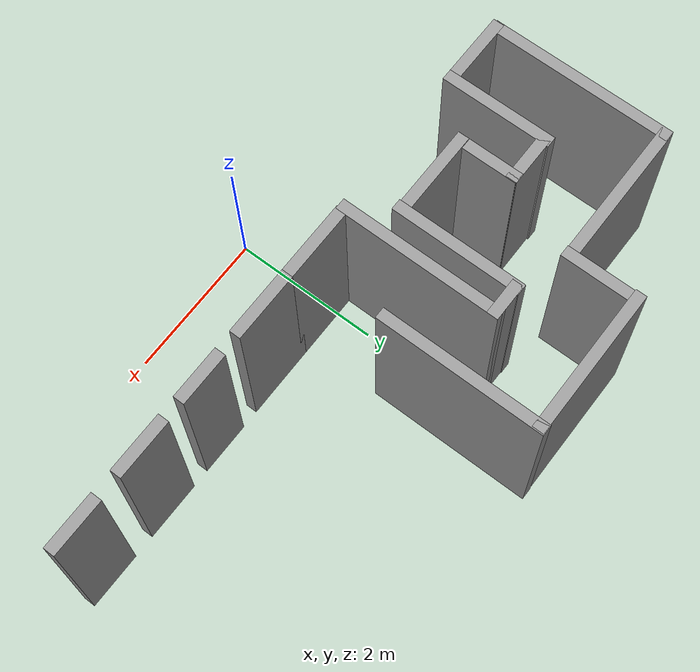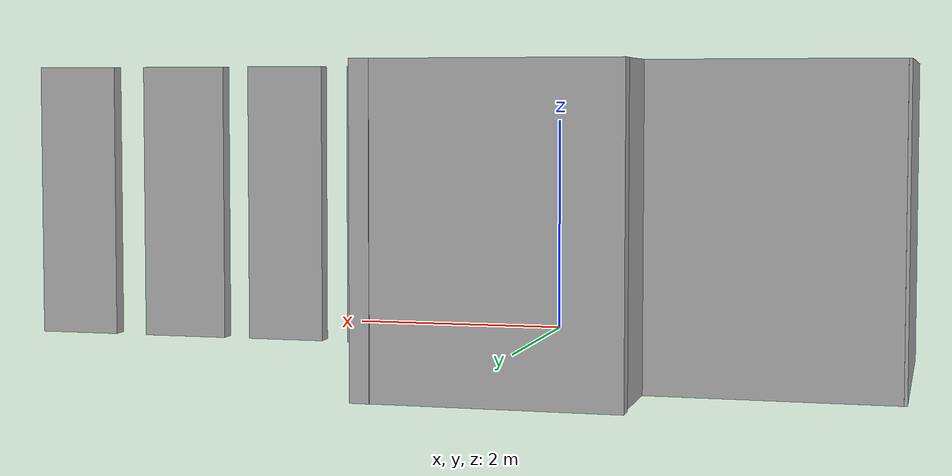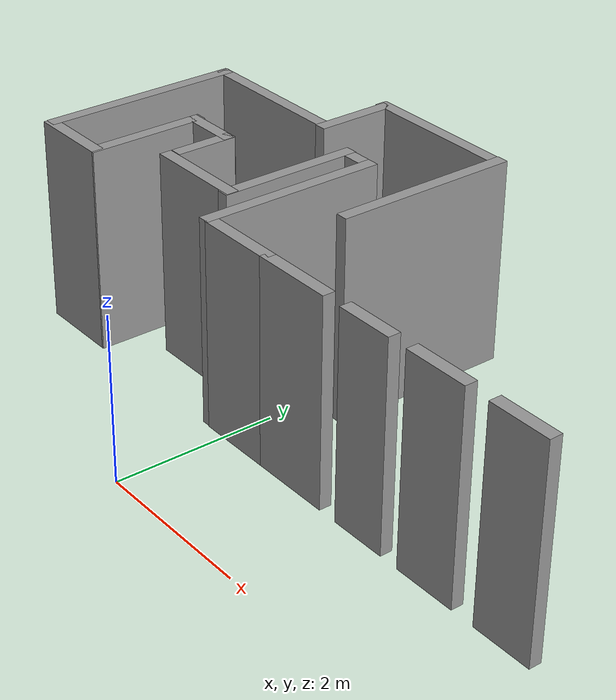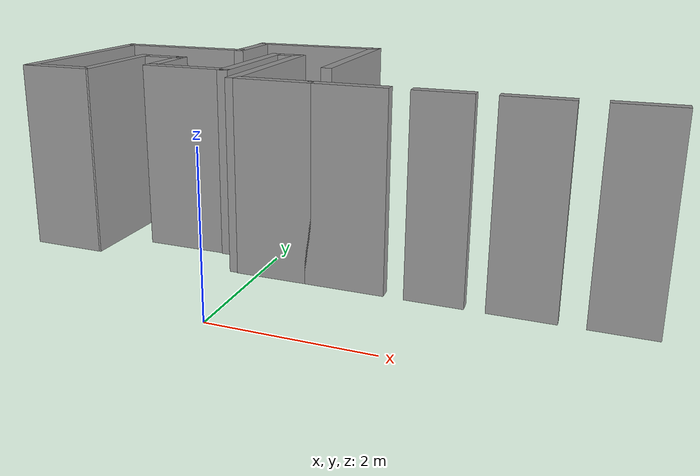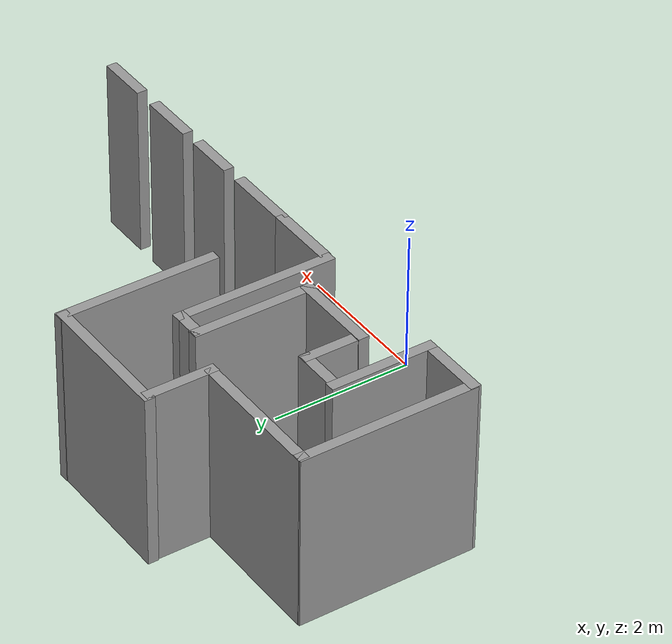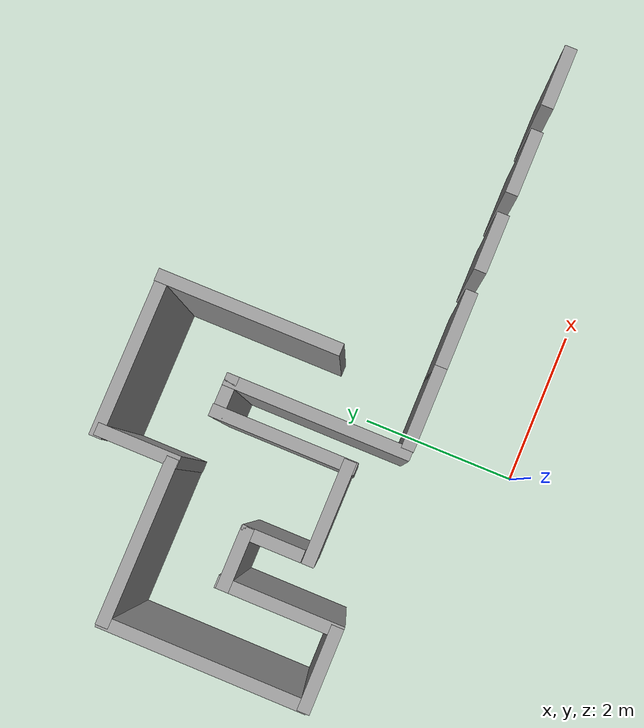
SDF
<?xml version='1.0'?>
<sdf version='1.7'>
  <model name='NewWorldEdit1'>
    <link name='Wall_10'>
      <pose>-2.10271 2.74597 0 0 -0 0</pose>
      <self_collide>0</self_collide>
      <enable_wind>0</enable_wind>
      <kinematic>0</kinematic>
      <visual name='Wall_10_Visual'>
        <pose>0 0 1.25 0 -0 0</pose>
        <geometry>
          <box>
            <size>0.75 0.15 2.5</size>
          </box>
        </geometry>
        <material>
          <script>
            <uri>file://media/materials/scripts/gazebo.material</uri>
            <name>Gazebo/Grey</name>
          </script>
          <ambient>1 1 1 1</ambient>
          <shader type='pixel'/>
        </material>
        <meta>
          <layer>0</layer>
        </meta>
        <transparency>0</transparency>
        <cast_shadows>1</cast_shadows>
      </visual>
      <collision name='Wall_10_Collision'>
        <laser_retro>0</laser_retro>
        <max_contacts>10</max_contacts>
        <pose>0 0 1.25 0 -0 0</pose>
        <geometry>
          <box>
            <size>0.75 0.15 2.5</size>
          </box>
        </geometry>
        <surface>
          <friction>
            <ode>
              <mu>1</mu>
              <mu2>1</mu2>
              <fdir1>0 0 0</fdir1>
              <slip1>0</slip1>
              <slip2>0</slip2>
            </ode>
            <torsional>
              <coefficient>1</coefficient>
              <patch_radius>0</patch_radius>
              <surface_radius>0</surface_radius>
              <use_patch_radius>1</use_patch_radius>
              <ode>
                <slip>0</slip>
              </ode>
            </torsional>
          </friction>
          <bounce>
            <restitution_coefficient>0</restitution_coefficient>
            <threshold>1e+06</threshold>
          </bounce>
          <contact>
            <collide_without_contact>0</collide_without_contact>
            <collide_without_contact_bitmask>1</collide_without_contact_bitmask>
            <collide_bitmask>1</collide_bitmask>
            <ode>
              <soft_cfm>0</soft_cfm>
              <soft_erp>0.2</soft_erp>
              <kp>1e+13</kp>
              <kd>1</kd>
              <max_vel>0.01</max_vel>
              <min_depth>0</min_depth>
            </ode>
            <bullet>
              <split_impulse>1</split_impulse>
              <split_impulse_penetration_threshold>-0.01</split_impulse_penetration_threshold>
              <soft_cfm>0</soft_cfm>
              <soft_erp>0.2</soft_erp>
              <kp>1e+13</kp>
              <kd>1</kd>
            </bullet>
          </contact>
        </surface>
      </collision>
    </link>
    <link name='Wall_14'>
      <pose>-1.79351 2.43671 0 0 0 -1.5708</pose>
      <self_collide>0</self_collide>
      <enable_wind>0</enable_wind>
      <kinematic>0</kinematic>
      <visual name='Wall_14_Visual'>
        <pose>0 0 1.25 0 -0 0</pose>
        <geometry>
          <box>
            <size>0.75 0.15 2.5</size>
          </box>
        </geometry>
        <material>
          <script>
            <uri>file://media/materials/scripts/gazebo.material</uri>
            <name>Gazebo/Grey</name>
          </script>
          <ambient>1 1 1 1</ambient>
          <shader type='pixel'/>
        </material>
        <meta>
          <layer>0</layer>
        </meta>
        <transparency>0</transparency>
        <cast_shadows>1</cast_shadows>
      </visual>
      <collision name='Wall_14_Collision'>
        <laser_retro>0</laser_retro>
        <max_contacts>10</max_contacts>
        <pose>0 0 1.25 0 -0 0</pose>
        <geometry>
          <box>
            <size>0.75 0.15 2.5</size>
          </box>
        </geometry>
        <surface>
          <friction>
            <ode>
              <mu>1</mu>
              <mu2>1</mu2>
              <fdir1>0 0 0</fdir1>
              <slip1>0</slip1>
              <slip2>0</slip2>
            </ode>
            <torsional>
              <coefficient>1</coefficient>
              <patch_radius>0</patch_radius>
              <surface_radius>0</surface_radius>
              <use_patch_radius>1</use_patch_radius>
              <ode>
                <slip>0</slip>
              </ode>
            </torsional>
          </friction>
          <bounce>
            <restitution_coefficient>0</restitution_coefficient>
            <threshold>1e+06</threshold>
          </bounce>
          <contact>
            <collide_without_contact>0</collide_without_contact>
            <collide_without_contact_bitmask>1</collide_without_contact_bitmask>
            <collide_bitmask>1</collide_bitmask>
            <ode>
              <soft_cfm>0</soft_cfm>
              <soft_erp>0.2</soft_erp>
              <kp>1e+13</kp>
              <kd>1</kd>
              <max_vel>0.01</max_vel>
              <min_depth>0</min_depth>
            </ode>
            <bullet>
              <split_impulse>1</split_impulse>
              <split_impulse_penetration_threshold>-0.01</split_impulse_penetration_threshold>
              <soft_cfm>0</soft_cfm>
              <soft_erp>0.2</soft_erp>
              <kp>1e+13</kp>
              <kd>1</kd>
            </bullet>
          </contact>
        </surface>
      </collision>
    </link>
    <link name='Wall_15'>
      <pose>-1.24347 1.97953 0 0 -0 0</pose>
      <self_collide>0</self_collide>
      <enable_wind>0</enable_wind>
      <kinematic>0</kinematic>
      <visual name='Wall_15_Visual'>
        <pose>0 0 1.25 0 -0 0</pose>
        <geometry>
          <box>
            <size>1.25 0.15 2.5</size>
          </box>
        </geometry>
        <material>
          <script>
            <uri>file://media/materials/scripts/gazebo.material</uri>
            <name>Gazebo/Grey</name>
          </script>
          <ambient>1 1 1 1</ambient>
          <shader type='pixel'/>
        </material>
        <meta>
          <layer>0</layer>
        </meta>
        <transparency>0</transparency>
        <cast_shadows>1</cast_shadows>
      </visual>
      <collision name='Wall_15_Collision'>
        <laser_retro>0</laser_retro>
        <max_contacts>10</max_contacts>
        <pose>0 0 1.25 0 -0 0</pose>
        <geometry>
          <box>
            <size>1.25 0.15 2.5</size>
          </box>
        </geometry>
        <surface>
          <friction>
            <ode>
              <mu>1</mu>
              <mu2>1</mu2>
              <fdir1>0 0 0</fdir1>
              <slip1>0</slip1>
              <slip2>0</slip2>
            </ode>
            <torsional>
              <coefficient>1</coefficient>
              <patch_radius>0</patch_radius>
              <surface_radius>0</surface_radius>
              <use_patch_radius>1</use_patch_radius>
              <ode>
                <slip>0</slip>
              </ode>
            </torsional>
          </friction>
          <bounce>
            <restitution_coefficient>0</restitution_coefficient>
            <threshold>1e+06</threshold>
          </bounce>
          <contact>
            <collide_without_contact>0</collide_without_contact>
            <collide_without_contact_bitmask>1</collide_without_contact_bitmask>
            <collide_bitmask>1</collide_bitmask>
            <ode>
              <soft_cfm>0</soft_cfm>
              <soft_erp>0.2</soft_erp>
              <kp>1e+13</kp>
              <kd>1</kd>
              <max_vel>0.01</max_vel>
              <min_depth>0</min_depth>
            </ode>
            <bullet>
              <split_impulse>1</split_impulse>
              <split_impulse_penetration_threshold>-0.01</split_impulse_penetration_threshold>
              <soft_cfm>0</soft_cfm>
              <soft_erp>0.2</soft_erp>
              <kp>1e+13</kp>
              <kd>1</kd>
            </bullet>
          </contact>
        </surface>
      </collision>
    </link>
    <link name='Wall_16'>
      <pose>-0.684225 2.76103 0 0 -0 1.5708</pose>
      <self_collide>0</self_collide>
      <enable_wind>0</enable_wind>
      <kinematic>0</kinematic>
      <visual name='Wall_16_Visual'>
        <pose>0 0 1.25 0 -0 0</pose>
        <geometry>
          <box>
            <size>1.75 0.15 2.5</size>
          </box>
        </geometry>
        <material>
          <script>
            <uri>file://media/materials/scripts/gazebo.material</uri>
            <name>Gazebo/Grey</name>
          </script>
          <ambient>1 1 1 1</ambient>
          <shader type='pixel'/>
        </material>
        <meta>
          <layer>0</layer>
        </meta>
        <transparency>0</transparency>
        <cast_shadows>1</cast_shadows>
      </visual>
      <collision name='Wall_16_Collision'>
        <laser_retro>0</laser_retro>
        <max_contacts>10</max_contacts>
        <pose>0 0 1.25 0 -0 0</pose>
        <geometry>
          <box>
            <size>1.75 0.15 2.5</size>
          </box>
        </geometry>
        <surface>
          <friction>
            <ode>
              <mu>1</mu>
              <mu2>1</mu2>
              <fdir1>0 0 0</fdir1>
              <slip1>0</slip1>
              <slip2>0</slip2>
            </ode>
            <torsional>
              <coefficient>1</coefficient>
              <patch_radius>0</patch_radius>
              <surface_radius>0</surface_radius>
              <use_patch_radius>1</use_patch_radius>
              <ode>
                <slip>0</slip>
              </ode>
            </torsional>
          </friction>
          <bounce>
            <restitution_coefficient>0</restitution_coefficient>
            <threshold>1e+06</threshold>
          </bounce>
          <contact>
            <collide_without_contact>0</collide_without_contact>
            <collide_without_contact_bitmask>1</collide_without_contact_bitmask>
            <collide_bitmask>1</collide_bitmask>
            <ode>
              <soft_cfm>0</soft_cfm>
              <soft_erp>0.2</soft_erp>
              <kp>1e+13</kp>
              <kd>1</kd>
              <max_vel>0.01</max_vel>
              <min_depth>0</min_depth>
            </ode>
            <bullet>
              <split_impulse>1</split_impulse>
              <split_impulse_penetration_threshold>-0.01</split_impulse_penetration_threshold>
              <soft_cfm>0</soft_cfm>
              <soft_erp>0.2</soft_erp>
              <kp>1e+13</kp>
              <kd>1</kd>
            </bullet>
          </contact>
        </surface>
      </collision>
    </link>
    <link name='Wall_17'>
      <pose>-0.481487 3.55179 0 0 -0 0</pose>
      <self_collide>0</self_collide>
      <enable_wind>0</enable_wind>
      <kinematic>0</kinematic>
      <visual name='Wall_17_Visual'>
        <pose>0 0 1.25 0 -0 0</pose>
        <geometry>
          <box>
            <size>0.5 0.15 2.5</size>
          </box>
        </geometry>
        <material>
          <script>
            <uri>file://media/materials/scripts/gazebo.material</uri>
            <name>Gazebo/Grey</name>
          </script>
          <ambient>1 1 1 1</ambient>
          <shader type='pixel'/>
        </material>
        <meta>
          <layer>0</layer>
        </meta>
        <transparency>0</transparency>
        <cast_shadows>1</cast_shadows>
      </visual>
      <collision name='Wall_17_Collision'>
        <laser_retro>0</laser_retro>
        <max_contacts>10</max_contacts>
        <pose>0 0 1.25 0 -0 0</pose>
        <geometry>
          <box>
            <size>0.5 0.15 2.5</size>
          </box>
        </geometry>
        <surface>
          <friction>
            <ode>
              <mu>1</mu>
              <mu2>1</mu2>
              <fdir1>0 0 0</fdir1>
              <slip1>0</slip1>
              <slip2>0</slip2>
            </ode>
            <torsional>
              <coefficient>1</coefficient>
              <patch_radius>0</patch_radius>
              <surface_radius>0</surface_radius>
              <use_patch_radius>1</use_patch_radius>
              <ode>
                <slip>0</slip>
              </ode>
            </torsional>
          </friction>
          <bounce>
            <restitution_coefficient>0</restitution_coefficient>
            <threshold>1e+06</threshold>
          </bounce>
          <contact>
            <collide_without_contact>0</collide_without_contact>
            <collide_without_contact_bitmask>1</collide_without_contact_bitmask>
            <collide_bitmask>1</collide_bitmask>
            <ode>
              <soft_cfm>0</soft_cfm>
              <soft_erp>0.2</soft_erp>
              <kp>1e+13</kp>
              <kd>1</kd>
              <max_vel>0.01</max_vel>
              <min_depth>0</min_depth>
            </ode>
            <bullet>
              <split_impulse>1</split_impulse>
              <split_impulse_penetration_threshold>-0.01</split_impulse_penetration_threshold>
              <soft_cfm>0</soft_cfm>
              <soft_erp>0.2</soft_erp>
              <kp>1e+13</kp>
              <kd>1</kd>
            </bullet>
          </contact>
        </surface>
      </collision>
    </link>
    <link name='Wall_18'>
      <pose>-0.306484 2.50179 0 0 0 -1.5708</pose>
      <self_collide>0</self_collide>
      <enable_wind>0</enable_wind>
      <kinematic>0</kinematic>
      <visual name='Wall_18_Visual'>
        <pose>0 0 1.25 0 -0 0</pose>
        <geometry>
          <box>
            <size>2.25 0.15 2.5</size>
          </box>
        </geometry>
        <material>
          <script>
            <uri>file://media/materials/scripts/gazebo.material</uri>
            <name>Gazebo/Grey</name>
          </script>
          <ambient>1 1 1 1</ambient>
          <shader type='pixel'/>
        </material>
        <meta>
          <layer>0</layer>
        </meta>
        <transparency>0</transparency>
        <cast_shadows>1</cast_shadows>
      </visual>
      <collision name='Wall_18_Collision'>
        <laser_retro>0</laser_retro>
        <max_contacts>10</max_contacts>
        <pose>0 0 1.25 0 -0 0</pose>
        <geometry>
          <box>
            <size>2.25 0.15 2.5</size>
          </box>
        </geometry>
        <surface>
          <friction>
            <ode>
              <mu>1</mu>
              <mu2>1</mu2>
              <fdir1>0 0 0</fdir1>
              <slip1>0</slip1>
              <slip2>0</slip2>
            </ode>
            <torsional>
              <coefficient>1</coefficient>
              <patch_radius>0</patch_radius>
              <surface_radius>0</surface_radius>
              <use_patch_radius>1</use_patch_radius>
              <ode>
                <slip>0</slip>
              </ode>
            </torsional>
          </friction>
          <bounce>
            <restitution_coefficient>0</restitution_coefficient>
            <threshold>1e+06</threshold>
          </bounce>
          <contact>
            <collide_without_contact>0</collide_without_contact>
            <collide_without_contact_bitmask>1</collide_without_contact_bitmask>
            <collide_bitmask>1</collide_bitmask>
            <ode>
              <soft_cfm>0</soft_cfm>
              <soft_erp>0.2</soft_erp>
              <kp>1e+13</kp>
              <kd>1</kd>
              <max_vel>0.01</max_vel>
              <min_depth>0</min_depth>
            </ode>
            <bullet>
              <split_impulse>1</split_impulse>
              <split_impulse_penetration_threshold>-0.01</split_impulse_penetration_threshold>
              <soft_cfm>0</soft_cfm>
              <soft_erp>0.2</soft_erp>
              <kp>1e+13</kp>
              <kd>1</kd>
            </bullet>
          </contact>
        </surface>
      </collision>
    </link>
    <link name='Wall_19'>
      <pose>0.229483 1.44254 0 0 -0 0</pose>
      <self_collide>0</self_collide>
      <enable_wind>0</enable_wind>
      <kinematic>0</kinematic>
      <gravity>1</gravity>
      <inertial>
        <mass>1</mass>
        <pose>0 0 0 0 -0 0</pose>
        <inertia>
          <ixx>1</ixx>
          <ixy>0</ixy>
          <ixz>0</ixz>
          <iyy>1</iyy>
          <iyz>0</iyz>
          <izz>1</izz>
        </inertia>
      </inertial>
      <visual name='Wall_19_Visual'>
        <pose>0 0 1.25 0 -0 0</pose>
        <geometry>
          <box>
            <size>1 0.15 2.5</size>
          </box>
        </geometry>
        <material>
          <script>
            <uri>file://media/materials/scripts/gazebo.material</uri>
            <name>Gazebo/Grey</name>
          </script>
          <ambient>1 1 1 1</ambient>
          <shader type='pixel'>
            <normal_map>__default__</normal_map>
          </shader>
        </material>
        <meta>
          <layer>0</layer>
        </meta>
        <transparency>0</transparency>
        <cast_shadows>1</cast_shadows>
      </visual>
      <collision name='Wall_19_Collision'>
        <laser_retro>0</laser_retro>
        <max_contacts>10</max_contacts>
        <pose>0 0 1.25 0 -0 0</pose>
        <geometry>
          <box>
            <size>1 0.15 2.5</size>
          </box>
        </geometry>
        <surface>
          <friction>
            <ode>
              <mu>1</mu>
              <mu2>1</mu2>
              <fdir1>0 0 0</fdir1>
              <slip1>0</slip1>
              <slip2>0</slip2>
            </ode>
            <torsional>
              <coefficient>1</coefficient>
              <patch_radius>0</patch_radius>
              <surface_radius>0</surface_radius>
              <use_patch_radius>1</use_patch_radius>
              <ode>
                <slip>0</slip>
              </ode>
            </torsional>
          </friction>
          <bounce>
            <restitution_coefficient>0</restitution_coefficient>
            <threshold>1e+06</threshold>
          </bounce>
          <contact>
            <collide_without_contact>0</collide_without_contact>
            <collide_without_contact_bitmask>1</collide_without_contact_bitmask>
            <collide_bitmask>1</collide_bitmask>
            <ode>
              <soft_cfm>0</soft_cfm>
              <soft_erp>0.2</soft_erp>
              <kp>1e+13</kp>
              <kd>1</kd>
              <max_vel>0.01</max_vel>
              <min_depth>0</min_depth>
            </ode>
            <bullet>
              <split_impulse>1</split_impulse>
              <split_impulse_penetration_threshold>-0.01</split_impulse_penetration_threshold>
              <soft_cfm>0</soft_cfm>
              <soft_erp>0.2</soft_erp>
              <kp>1e+13</kp>
              <kd>1</kd>
            </bullet>
          </contact>
        </surface>
      </collision>
    </link>
    <link name='Wall_2'>
      <pose>-3.29029 2.63197 0 0 -0 1.5708</pose>
      <self_collide>0</self_collide>
      <enable_wind>0</enable_wind>
      <kinematic>0</kinematic>
      <visual name='Wall_2_Visual'>
        <pose>0 0 1.25 0 -0 0</pose>
        <geometry>
          <box>
            <size>2.5 0.15 2.5</size>
          </box>
        </geometry>
        <material>
          <script>
            <uri>file://media/materials/scripts/gazebo.material</uri>
            <name>Gazebo/Grey</name>
          </script>
          <ambient>1 1 1 1</ambient>
          <shader type='pixel'/>
        </material>
        <meta>
          <layer>0</layer>
        </meta>
        <transparency>0</transparency>
        <cast_shadows>1</cast_shadows>
      </visual>
      <collision name='Wall_2_Collision'>
        <laser_retro>0</laser_retro>
        <max_contacts>10</max_contacts>
        <pose>0 0 1.25 0 -0 0</pose>
        <geometry>
          <box>
            <size>2.5 0.15 2.5</size>
          </box>
        </geometry>
        <surface>
          <friction>
            <ode>
              <mu>1</mu>
              <mu2>1</mu2>
              <fdir1>0 0 0</fdir1>
              <slip1>0</slip1>
              <slip2>0</slip2>
            </ode>
            <torsional>
              <coefficient>1</coefficient>
              <patch_radius>0</patch_radius>
              <surface_radius>0</surface_radius>
              <use_patch_radius>1</use_patch_radius>
              <ode>
                <slip>0</slip>
              </ode>
            </torsional>
          </friction>
          <bounce>
            <restitution_coefficient>0</restitution_coefficient>
            <threshold>1e+06</threshold>
          </bounce>
          <contact>
            <collide_without_contact>0</collide_without_contact>
            <collide_without_contact_bitmask>1</collide_without_contact_bitmask>
            <collide_bitmask>1</collide_bitmask>
            <ode>
              <soft_cfm>0</soft_cfm>
              <soft_erp>0.2</soft_erp>
              <kp>1e+13</kp>
              <kd>1</kd>
              <max_vel>0.01</max_vel>
              <min_depth>0</min_depth>
            </ode>
            <bullet>
              <split_impulse>1</split_impulse>
              <split_impulse_penetration_threshold>-0.01</split_impulse_penetration_threshold>
              <soft_cfm>0</soft_cfm>
              <soft_erp>0.2</soft_erp>
              <kp>1e+13</kp>
              <kd>1</kd>
            </bullet>
          </contact>
        </surface>
      </collision>
    </link>
    <link name='Wall_26'>
      <pose>3.24593 1.44254 -0.001115 0 -0 0</pose>
      <self_collide>0</self_collide>
      <enable_wind>0</enable_wind>
      <kinematic>0</kinematic>
      <gravity>1</gravity>
      <inertial>
        <mass>1</mass>
        <pose>0 0 0 0 -0 0</pose>
        <inertia>
          <ixx>1</ixx>
          <ixy>0</ixy>
          <ixz>0</ixz>
          <iyy>1</iyy>
          <iyz>0</iyz>
          <izz>1</izz>
        </inertia>
      </inertial>
      <visual name='Wall_26_Visual'>
        <pose>0 0 1.25 0 -0 0</pose>
        <geometry>
          <box>
            <size>0.79 0.15 2.5</size>
          </box>
        </geometry>
        <material>
          <script>
            <uri>file://media/materials/scripts/gazebo.material</uri>
            <name>Gazebo/Grey</name>
          </script>
          <ambient>1 1 1 1</ambient>
          <shader type='pixel'>
            <normal_map>__default__</normal_map>
          </shader>
          <diffuse>0.7 0.7 0.7 1</diffuse>
          <specular>0.01 0.01 0.01 1</specular>
          <emissive>0 0 0 1</emissive>
        </material>
        <meta>
          <layer>0</layer>
        </meta>
        <transparency>0</transparency>
        <cast_shadows>1</cast_shadows>
      </visual>
      <collision name='Wall_26_Collision'>
        <laser_retro>0</laser_retro>
        <max_contacts>10</max_contacts>
        <pose>0 0 1.25 0 -0 0</pose>
        <geometry>
          <box>
            <size>0.79 0.15 2.5</size>
          </box>
        </geometry>
        <surface>
          <friction>
            <ode>
              <mu>1</mu>
              <mu2>1</mu2>
              <fdir1>0 0 0</fdir1>
              <slip1>0</slip1>
              <slip2>0</slip2>
            </ode>
            <torsional>
              <coefficient>1</coefficient>
              <patch_radius>0</patch_radius>
              <surface_radius>0</surface_radius>
              <use_patch_radius>1</use_patch_radius>
              <ode>
                <slip>0</slip>
              </ode>
            </torsional>
          </friction>
          <bounce>
            <restitution_coefficient>0</restitution_coefficient>
            <threshold>1e+06</threshold>
          </bounce>
          <contact>
            <collide_without_contact>0</collide_without_contact>
            <collide_without_contact_bitmask>1</collide_without_contact_bitmask>
            <collide_bitmask>1</collide_bitmask>
            <ode>
              <soft_cfm>0</soft_cfm>
              <soft_erp>0.2</soft_erp>
              <kp>1e+13</kp>
              <kd>1</kd>
              <max_vel>0.01</max_vel>
              <min_depth>0</min_depth>
            </ode>
            <bullet>
              <split_impulse>1</split_impulse>
              <split_impulse_penetration_threshold>-0.01</split_impulse_penetration_threshold>
              <soft_cfm>0</soft_cfm>
              <soft_erp>0.2</soft_erp>
              <kp>1e+13</kp>
              <kd>1</kd>
            </bullet>
          </contact>
        </surface>
      </collision>
    </link>
    <link name='Wall_3'>
      <pose>-2.34023 3.81531 0 0 -0 0</pose>
      <self_collide>0</self_collide>
      <enable_wind>0</enable_wind>
      <kinematic>0</kinematic>
      <visual name='Wall_3_Visual'>
        <pose>0 0 1.25 0 -0 0</pose>
        <geometry>
          <box>
            <size>2 0.15 2.5</size>
          </box>
        </geometry>
        <material>
          <script>
            <uri>file://media/materials/scripts/gazebo.material</uri>
            <name>Gazebo/Grey</name>
          </script>
          <ambient>1 1 1 1</ambient>
          <shader type='pixel'/>
        </material>
        <meta>
          <layer>0</layer>
        </meta>
        <transparency>0</transparency>
        <cast_shadows>1</cast_shadows>
      </visual>
      <collision name='Wall_3_Collision'>
        <laser_retro>0</laser_retro>
        <max_contacts>10</max_contacts>
        <pose>0 0 1.25 0 -0 0</pose>
        <geometry>
          <box>
            <size>2 0.15 2.5</size>
          </box>
        </geometry>
        <surface>
          <friction>
            <ode>
              <mu>1</mu>
              <mu2>1</mu2>
              <fdir1>0 0 0</fdir1>
              <slip1>0</slip1>
              <slip2>0</slip2>
            </ode>
            <torsional>
              <coefficient>1</coefficient>
              <patch_radius>0</patch_radius>
              <surface_radius>0</surface_radius>
              <use_patch_radius>1</use_patch_radius>
              <ode>
                <slip>0</slip>
              </ode>
            </torsional>
          </friction>
          <bounce>
            <restitution_coefficient>0</restitution_coefficient>
            <threshold>1e+06</threshold>
          </bounce>
          <contact>
            <collide_without_contact>0</collide_without_contact>
            <collide_without_contact_bitmask>1</collide_without_contact_bitmask>
            <collide_bitmask>1</collide_bitmask>
            <ode>
              <soft_cfm>0</soft_cfm>
              <soft_erp>0.2</soft_erp>
              <kp>1e+13</kp>
              <kd>1</kd>
              <max_vel>0.01</max_vel>
              <min_depth>0</min_depth>
            </ode>
            <bullet>
              <split_impulse>1</split_impulse>
              <split_impulse_penetration_threshold>-0.01</split_impulse_penetration_threshold>
              <soft_cfm>0</soft_cfm>
              <soft_erp>0.2</soft_erp>
              <kp>1e+13</kp>
              <kd>1</kd>
            </bullet>
          </contact>
        </surface>
      </collision>
    </link>
    <link name='Wall_35'>
      <pose>2.25269 1.44254 0 0 -0 0</pose>
      <self_collide>0</self_collide>
      <enable_wind>0</enable_wind>
      <kinematic>0</kinematic>
      <gravity>1</gravity>
      <inertial>
        <mass>1</mass>
        <pose>0 0 0 0 -0 0</pose>
        <inertia>
          <ixx>1</ixx>
          <ixy>0</ixy>
          <ixz>0</ixz>
          <iyy>1</iyy>
          <iyz>0</iyz>
          <izz>1</izz>
        </inertia>
      </inertial>
      <visual name='Wall_35_Visual'>
        <pose>0 0 1.25 0 -0 0</pose>
        <geometry>
          <box>
            <size>0.71 0.15 2.5</size>
          </box>
        </geometry>
        <material>
          <script>
            <uri>file://media/materials/scripts/gazebo.material</uri>
            <name>Gazebo/Grey</name>
          </script>
          <ambient>1 1 1 1</ambient>
          <shader type='pixel'>
            <normal_map>__default__</normal_map>
          </shader>
          <diffuse>0.7 0.7 0.7 1</diffuse>
          <specular>0.01 0.01 0.01 1</specular>
          <emissive>0 0 0 1</emissive>
        </material>
        <meta>
          <layer>0</layer>
        </meta>
        <transparency>0</transparency>
        <cast_shadows>1</cast_shadows>
      </visual>
      <collision name='Wall_35_Collision'>
        <laser_retro>0</laser_retro>
        <max_contacts>10</max_contacts>
        <pose>0 0 1.25 0 -0 0</pose>
        <geometry>
          <box>
            <size>0.71 0.15 2.5</size>
          </box>
        </geometry>
        <surface>
          <friction>
            <ode>
              <mu>1</mu>
              <mu2>1</mu2>
              <fdir1>0 0 0</fdir1>
              <slip1>0</slip1>
              <slip2>0</slip2>
            </ode>
            <torsional>
              <coefficient>1</coefficient>
              <patch_radius>0</patch_radius>
              <surface_radius>0</surface_radius>
              <use_patch_radius>1</use_patch_radius>
              <ode>
                <slip>0</slip>
              </ode>
            </torsional>
          </friction>
          <bounce>
            <restitution_coefficient>0</restitution_coefficient>
            <threshold>1e+06</threshold>
          </bounce>
          <contact>
            <collide_without_contact>0</collide_without_contact>
            <collide_without_contact_bitmask>1</collide_without_contact_bitmask>
            <collide_bitmask>1</collide_bitmask>
            <ode>
              <soft_cfm>0</soft_cfm>
              <soft_erp>0.2</soft_erp>
              <kp>1e+13</kp>
              <kd>1</kd>
              <max_vel>0.01</max_vel>
              <min_depth>0</min_depth>
            </ode>
            <bullet>
              <split_impulse>1</split_impulse>
              <split_impulse_penetration_threshold>-0.01</split_impulse_penetration_threshold>
              <soft_cfm>0</soft_cfm>
              <soft_erp>0.2</soft_erp>
              <kp>1e+13</kp>
              <kd>1</kd>
            </bullet>
          </contact>
        </surface>
      </collision>
    </link>
    <link name='Wall_37'>
      <pose>4.31411 1.44254 0 0 -0 0</pose>
      <self_collide>0</self_collide>
      <enable_wind>0</enable_wind>
      <kinematic>0</kinematic>
      <gravity>1</gravity>
      <inertial>
        <mass>1</mass>
        <pose>0 0 0 0 -0 0</pose>
        <inertia>
          <ixx>1</ixx>
          <ixy>0</ixy>
          <ixz>0</ixz>
          <iyy>1</iyy>
          <iyz>0</iyz>
          <izz>1</izz>
        </inertia>
      </inertial>
      <visual name='Wall_37_Visual'>
        <pose>0 0 1.25 0 -0 0</pose>
        <geometry>
          <box>
            <size>0.75 0.15 2.5</size>
          </box>
        </geometry>
        <material>
          <script>
            <uri>file://media/materials/scripts/gazebo.material</uri>
            <name>Gazebo/Grey</name>
          </script>
          <ambient>1 1 1 1</ambient>
          <shader type='pixel'>
            <normal_map>__default__</normal_map>
          </shader>
          <diffuse>0.7 0.7 0.7 1</diffuse>
          <specular>0.01 0.01 0.01 1</specular>
          <emissive>0 0 0 1</emissive>
        </material>
        <meta>
          <layer>0</layer>
        </meta>
        <transparency>0</transparency>
        <cast_shadows>1</cast_shadows>
      </visual>
      <collision name='Wall_37_Collision'>
        <laser_retro>0</laser_retro>
        <max_contacts>10</max_contacts>
        <pose>0 0 1.25 0 -0 0</pose>
        <geometry>
          <box>
            <size>0.75 0.15 2.5</size>
          </box>
        </geometry>
        <surface>
          <friction>
            <ode>
              <mu>1</mu>
              <mu2>1</mu2>
              <fdir1>0 0 0</fdir1>
              <slip1>0</slip1>
              <slip2>0</slip2>
            </ode>
            <torsional>
              <coefficient>1</coefficient>
              <patch_radius>0</patch_radius>
              <surface_radius>0</surface_radius>
              <use_patch_radius>1</use_patch_radius>
              <ode>
                <slip>0</slip>
              </ode>
            </torsional>
          </friction>
          <bounce>
            <restitution_coefficient>0</restitution_coefficient>
            <threshold>1e+06</threshold>
          </bounce>
          <contact>
            <collide_without_contact>0</collide_without_contact>
            <collide_without_contact_bitmask>1</collide_without_contact_bitmask>
            <collide_bitmask>1</collide_bitmask>
            <ode>
              <soft_cfm>0</soft_cfm>
              <soft_erp>0.2</soft_erp>
              <kp>1e+13</kp>
              <kd>1</kd>
              <max_vel>0.01</max_vel>
              <min_depth>0</min_depth>
            </ode>
            <bullet>
              <split_impulse>1</split_impulse>
              <split_impulse_penetration_threshold>-0.01</split_impulse_penetration_threshold>
              <soft_cfm>0</soft_cfm>
              <soft_erp>0.2</soft_erp>
              <kp>1e+13</kp>
              <kd>1</kd>
            </bullet>
          </contact>
        </surface>
      </collision>
    </link>
    <link name='Wall_39'>
      <pose>1.15405 1.44254 0 0 -0 0</pose>
      <self_collide>0</self_collide>
      <enable_wind>0</enable_wind>
      <kinematic>0</kinematic>
      <gravity>1</gravity>
      <inertial>
        <mass>1</mass>
        <pose>0 0 0 0 -0 0</pose>
        <inertia>
          <ixx>1</ixx>
          <ixy>0</ixy>
          <ixz>0</ixz>
          <iyy>1</iyy>
          <iyz>0</iyz>
          <izz>1</izz>
        </inertia>
      </inertial>
      <visual name='Wall_39_Visual'>
        <pose>0 0 1.25 0 -0 0</pose>
        <geometry>
          <box>
            <size>1 0.15 2.5</size>
          </box>
        </geometry>
        <material>
          <script>
            <uri>file://media/materials/scripts/gazebo.material</uri>
            <name>Gazebo/Grey</name>
          </script>
          <ambient>1 1 1 1</ambient>
          <shader type='pixel'>
            <normal_map>__default__</normal_map>
          </shader>
          <diffuse>0.7 0.7 0.7 1</diffuse>
          <specular>0.01 0.01 0.01 1</specular>
          <emissive>0 0 0 1</emissive>
        </material>
        <meta>
          <layer>0</layer>
        </meta>
        <transparency>0</transparency>
        <cast_shadows>1</cast_shadows>
      </visual>
      <collision name='Wall_39_Collision'>
        <laser_retro>0</laser_retro>
        <max_contacts>10</max_contacts>
        <pose>0 0 1.25 0 -0 0</pose>
        <geometry>
          <box>
            <size>1 0.15 2.5</size>
          </box>
        </geometry>
        <surface>
          <friction>
            <ode>
              <mu>1</mu>
              <mu2>1</mu2>
              <fdir1>0 0 0</fdir1>
              <slip1>0</slip1>
              <slip2>0</slip2>
            </ode>
            <torsional>
              <coefficient>1</coefficient>
              <patch_radius>0</patch_radius>
              <surface_radius>0</surface_radius>
              <use_patch_radius>1</use_patch_radius>
              <ode>
                <slip>0</slip>
              </ode>
            </torsional>
          </friction>
          <bounce>
            <restitution_coefficient>0</restitution_coefficient>
            <threshold>1e+06</threshold>
          </bounce>
          <contact>
            <collide_without_contact>0</collide_without_contact>
            <collide_without_contact_bitmask>1</collide_without_contact_bitmask>
            <collide_bitmask>1</collide_bitmask>
            <ode>
              <soft_cfm>0</soft_cfm>
              <soft_erp>0.2</soft_erp>
              <kp>1e+13</kp>
              <kd>1</kd>
              <max_vel>0.01</max_vel>
              <min_depth>0</min_depth>
            </ode>
            <bullet>
              <split_impulse>1</split_impulse>
              <split_impulse_penetration_threshold>-0.01</split_impulse_penetration_threshold>
              <soft_cfm>0</soft_cfm>
              <soft_erp>0.2</soft_erp>
              <kp>1e+13</kp>
              <kd>1</kd>
            </bullet>
          </contact>
        </surface>
      </collision>
    </link>
    <link name='Wall_4'>
      <pose>-1.3651 4.23195 0 0 -0 1.5708</pose>
      <self_collide>0</self_collide>
      <enable_wind>0</enable_wind>
      <kinematic>0</kinematic>
      <visual name='Wall_4_Visual'>
        <pose>0 0 1.25 0 -0 0</pose>
        <geometry>
          <box>
            <size>1 0.15 2.5</size>
          </box>
        </geometry>
        <material>
          <script>
            <uri>file://media/materials/scripts/gazebo.material</uri>
            <name>Gazebo/Grey</name>
          </script>
          <ambient>1 1 1 1</ambient>
          <shader type='pixel'/>
        </material>
        <meta>
          <layer>0</layer>
        </meta>
        <transparency>0</transparency>
        <cast_shadows>1</cast_shadows>
      </visual>
      <collision name='Wall_4_Collision'>
        <laser_retro>0</laser_retro>
        <max_contacts>10</max_contacts>
        <pose>0 0 1.25 0 -0 0</pose>
        <geometry>
          <box>
            <size>1 0.15 2.5</size>
          </box>
        </geometry>
        <surface>
          <friction>
            <ode>
              <mu>1</mu>
              <mu2>1</mu2>
              <fdir1>0 0 0</fdir1>
              <slip1>0</slip1>
              <slip2>0</slip2>
            </ode>
            <torsional>
              <coefficient>1</coefficient>
              <patch_radius>0</patch_radius>
              <surface_radius>0</surface_radius>
              <use_patch_radius>1</use_patch_radius>
              <ode>
                <slip>0</slip>
              </ode>
            </torsional>
          </friction>
          <bounce>
            <restitution_coefficient>0</restitution_coefficient>
            <threshold>1e+06</threshold>
          </bounce>
          <contact>
            <collide_without_contact>0</collide_without_contact>
            <collide_without_contact_bitmask>1</collide_without_contact_bitmask>
            <collide_bitmask>1</collide_bitmask>
            <ode>
              <soft_cfm>0</soft_cfm>
              <soft_erp>0.2</soft_erp>
              <kp>1e+13</kp>
              <kd>1</kd>
              <max_vel>0.01</max_vel>
              <min_depth>0</min_depth>
            </ode>
            <bullet>
              <split_impulse>1</split_impulse>
              <split_impulse_penetration_threshold>-0.01</split_impulse_penetration_threshold>
              <soft_cfm>0</soft_cfm>
              <soft_erp>0.2</soft_erp>
              <kp>1e+13</kp>
              <kd>1</kd>
            </bullet>
          </contact>
        </surface>
      </collision>
    </link>
    <link name='Wall_5'>
      <pose>-0.456796 4.70709 0 0 -0 0</pose>
      <self_collide>0</self_collide>
      <enable_wind>0</enable_wind>
      <kinematic>0</kinematic>
      <visual name='Wall_5_Visual'>
        <pose>0 0 1.25 0 -0 0</pose>
        <geometry>
          <box>
            <size>2 0.15 2.5</size>
          </box>
        </geometry>
        <material>
          <script>
            <uri>file://media/materials/scripts/gazebo.material</uri>
            <name>Gazebo/Grey</name>
          </script>
          <ambient>1 1 1 1</ambient>
          <shader type='pixel'/>
        </material>
        <meta>
          <layer>0</layer>
        </meta>
        <transparency>0</transparency>
        <cast_shadows>1</cast_shadows>
      </visual>
      <collision name='Wall_5_Collision'>
        <laser_retro>0</laser_retro>
        <max_contacts>10</max_contacts>
        <pose>0 0 1.25 0 -0 0</pose>
        <geometry>
          <box>
            <size>2 0.15 2.5</size>
          </box>
        </geometry>
        <surface>
          <friction>
            <ode>
              <mu>1</mu>
              <mu2>1</mu2>
              <fdir1>0 0 0</fdir1>
              <slip1>0</slip1>
              <slip2>0</slip2>
            </ode>
            <torsional>
              <coefficient>1</coefficient>
              <patch_radius>0</patch_radius>
              <surface_radius>0</surface_radius>
              <use_patch_radius>1</use_patch_radius>
              <ode>
                <slip>0</slip>
              </ode>
            </torsional>
          </friction>
          <bounce>
            <restitution_coefficient>0</restitution_coefficient>
            <threshold>1e+06</threshold>
          </bounce>
          <contact>
            <collide_without_contact>0</collide_without_contact>
            <collide_without_contact_bitmask>1</collide_without_contact_bitmask>
            <collide_bitmask>1</collide_bitmask>
            <ode>
              <soft_cfm>0</soft_cfm>
              <soft_erp>0.2</soft_erp>
              <kp>1e+13</kp>
              <kd>1</kd>
              <max_vel>0.01</max_vel>
              <min_depth>0</min_depth>
            </ode>
            <bullet>
              <split_impulse>1</split_impulse>
              <split_impulse_penetration_threshold>-0.01</split_impulse_penetration_threshold>
              <soft_cfm>0</soft_cfm>
              <soft_erp>0.2</soft_erp>
              <kp>1e+13</kp>
              <kd>1</kd>
            </bullet>
          </contact>
        </surface>
      </collision>
    </link>
    <link name='Wall_6'>
      <pose>0.484894 3.66543 0 0 0 -1.5708</pose>
      <self_collide>0</self_collide>
      <enable_wind>0</enable_wind>
      <kinematic>0</kinematic>
      <gravity>1</gravity>
      <inertial>
        <mass>0.84375</mass>
        <pose>0 0 0 0 -0 0</pose>
        <inertia>
          <ixx>0.441035</ixx>
          <ixy>0</ixy>
          <ixz>0</ixz>
          <iyy>0.79541</iyy>
          <iyz>0</iyz>
          <izz>0.357539</izz>
        </inertia>
      </inertial>
      <visual name='Wall_6_Visual'>
        <pose>0 0 1.25 0 -0 0</pose>
        <geometry>
          <box>
            <size>2.25 0.15 2.5</size>
          </box>
        </geometry>
        <material>
          <script>
            <uri>file://media/materials/scripts/gazebo.material</uri>
            <name>Gazebo/Grey</name>
          </script>
          <ambient>1 1 1 1</ambient>
          <shader type='pixel'>
            <normal_map>__default__</normal_map>
          </shader>
        </material>
        <meta>
          <layer>0</layer>
        </meta>
        <transparency>0</transparency>
        <cast_shadows>1</cast_shadows>
      </visual>
      <collision name='Wall_6_Collision'>
        <laser_retro>0</laser_retro>
        <max_contacts>10</max_contacts>
        <pose>0 0 1.25 0 -0 0</pose>
        <geometry>
          <box>
            <size>2.25 0.15 2.5</size>
          </box>
        </geometry>
        <surface>
          <friction>
            <ode>
              <mu>1</mu>
              <mu2>1</mu2>
              <fdir1>0 0 0</fdir1>
              <slip1>0</slip1>
              <slip2>0</slip2>
            </ode>
            <torsional>
              <coefficient>1</coefficient>
              <patch_radius>0</patch_radius>
              <surface_radius>0</surface_radius>
              <use_patch_radius>1</use_patch_radius>
              <ode>
                <slip>0</slip>
              </ode>
            </torsional>
          </friction>
          <bounce>
            <restitution_coefficient>0</restitution_coefficient>
            <threshold>1e+06</threshold>
          </bounce>
          <contact>
            <collide_without_contact>0</collide_without_contact>
            <collide_without_contact_bitmask>1</collide_without_contact_bitmask>
            <collide_bitmask>1</collide_bitmask>
            <ode>
              <soft_cfm>0</soft_cfm>
              <soft_erp>0.2</soft_erp>
              <kp>1e+13</kp>
              <kd>1</kd>
              <max_vel>0.01</max_vel>
              <min_depth>0</min_depth>
            </ode>
            <bullet>
              <split_impulse>1</split_impulse>
              <split_impulse_penetration_threshold>-0.01</split_impulse_penetration_threshold>
              <soft_cfm>0</soft_cfm>
              <soft_erp>0.2</soft_erp>
              <kp>1e+13</kp>
              <kd>1</kd>
            </bullet>
          </contact>
        </surface>
      </collision>
    </link>
    <link name='Wall_8'>
      <pose>-2.85545 1.41444 0 0 -0 0</pose>
      <self_collide>0</self_collide>
      <enable_wind>0</enable_wind>
      <kinematic>0</kinematic>
      <visual name='Wall_8_Visual'>
        <pose>0 0 1.25 0 -0 0</pose>
        <geometry>
          <box>
            <size>1 0.15 2.5</size>
          </box>
        </geometry>
        <material>
          <script>
            <uri>file://media/materials/scripts/gazebo.material</uri>
            <name>Gazebo/Grey</name>
          </script>
          <ambient>1 1 1 1</ambient>
          <shader type='pixel'/>
        </material>
        <meta>
          <layer>0</layer>
        </meta>
        <transparency>0</transparency>
        <cast_shadows>1</cast_shadows>
      </visual>
      <collision name='Wall_8_Collision'>
        <laser_retro>0</laser_retro>
        <max_contacts>10</max_contacts>
        <pose>0 0 1.25 0 -0 0</pose>
        <geometry>
          <box>
            <size>1 0.15 2.5</size>
          </box>
        </geometry>
        <surface>
          <friction>
            <ode>
              <mu>1</mu>
              <mu2>1</mu2>
              <fdir1>0 0 0</fdir1>
              <slip1>0</slip1>
              <slip2>0</slip2>
            </ode>
            <torsional>
              <coefficient>1</coefficient>
              <patch_radius>0</patch_radius>
              <surface_radius>0</surface_radius>
              <use_patch_radius>1</use_patch_radius>
              <ode>
                <slip>0</slip>
              </ode>
            </torsional>
          </friction>
          <bounce>
            <restitution_coefficient>0</restitution_coefficient>
            <threshold>1e+06</threshold>
          </bounce>
          <contact>
            <collide_without_contact>0</collide_without_contact>
            <collide_without_contact_bitmask>1</collide_without_contact_bitmask>
            <collide_bitmask>1</collide_bitmask>
            <ode>
              <soft_cfm>0</soft_cfm>
              <soft_erp>0.2</soft_erp>
              <kp>1e+13</kp>
              <kd>1</kd>
              <max_vel>0.01</max_vel>
              <min_depth>0</min_depth>
            </ode>
            <bullet>
              <split_impulse>1</split_impulse>
              <split_impulse_penetration_threshold>-0.01</split_impulse_penetration_threshold>
              <soft_cfm>0</soft_cfm>
              <soft_erp>0.2</soft_erp>
              <kp>1e+13</kp>
              <kd>1</kd>
            </bullet>
          </contact>
        </surface>
      </collision>
    </link>
    <link name='Wall_9'>
      <pose>-2.40271 2.08947 0 0 -0 1.5708</pose>
      <self_collide>0</self_collide>
      <enable_wind>0</enable_wind>
      <kinematic>0</kinematic>
      <visual name='Wall_9_Visual'>
        <pose>0 0 1.25 0 -0 0</pose>
        <geometry>
          <box>
            <size>1.5 0.15 2.5</size>
          </box>
        </geometry>
        <material>
          <script>
            <uri>file://media/materials/scripts/gazebo.material</uri>
            <name>Gazebo/Grey</name>
          </script>
          <ambient>1 1 1 1</ambient>
          <shader type='pixel'/>
        </material>
        <meta>
          <layer>0</layer>
        </meta>
        <transparency>0</transparency>
        <cast_shadows>1</cast_shadows>
      </visual>
      <collision name='Wall_9_Collision'>
        <laser_retro>0</laser_retro>
        <max_contacts>10</max_contacts>
        <pose>0 0 1.25 0 -0 0</pose>
        <geometry>
          <box>
            <size>1.5 0.15 2.5</size>
          </box>
        </geometry>
        <surface>
          <friction>
            <ode>
              <mu>1</mu>
              <mu2>1</mu2>
              <fdir1>0 0 0</fdir1>
              <slip1>0</slip1>
              <slip2>0</slip2>
            </ode>
            <torsional>
              <coefficient>1</coefficient>
              <patch_radius>0</patch_radius>
              <surface_radius>0</surface_radius>
              <use_patch_radius>1</use_patch_radius>
              <ode>
                <slip>0</slip>
              </ode>
            </torsional>
          </friction>
          <bounce>
            <restitution_coefficient>0</restitution_coefficient>
            <threshold>1e+06</threshold>
          </bounce>
          <contact>
            <collide_without_contact>0</collide_without_contact>
            <collide_without_contact_bitmask>1</collide_without_contact_bitmask>
            <collide_bitmask>1</collide_bitmask>
            <ode>
              <soft_cfm>0</soft_cfm>
              <soft_erp>0.2</soft_erp>
              <kp>1e+13</kp>
              <kd>1</kd>
              <max_vel>0.01</max_vel>
              <min_depth>0</min_depth>
            </ode>
            <bullet>
              <split_impulse>1</split_impulse>
              <split_impulse_penetration_threshold>-0.01</split_impulse_penetration_threshold>
              <soft_cfm>0</soft_cfm>
              <soft_erp>0.2</soft_erp>
              <kp>1e+13</kp>
              <kd>1</kd>
            </bullet>
          </contact>
        </surface>
      </collision>
    </link>
    <static>1</static>
    <allow_auto_disable>1</allow_auto_disable>
  </model>
</sdf>
